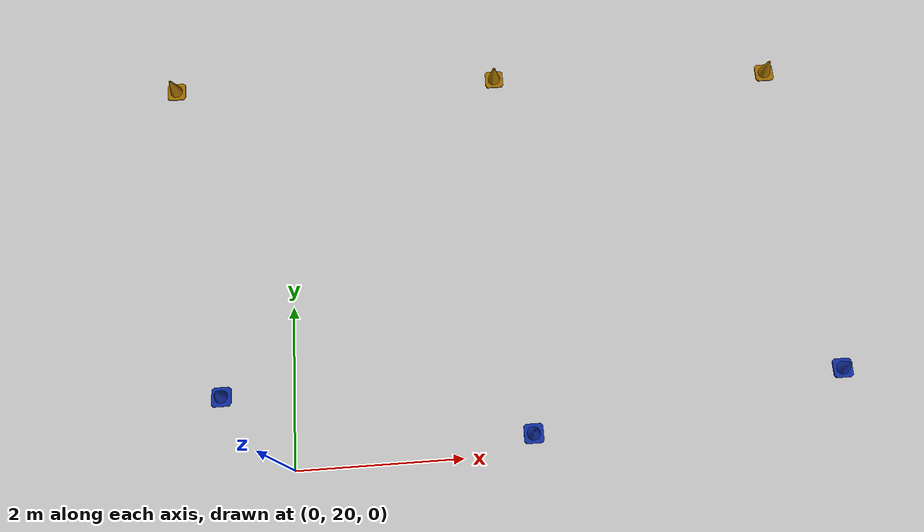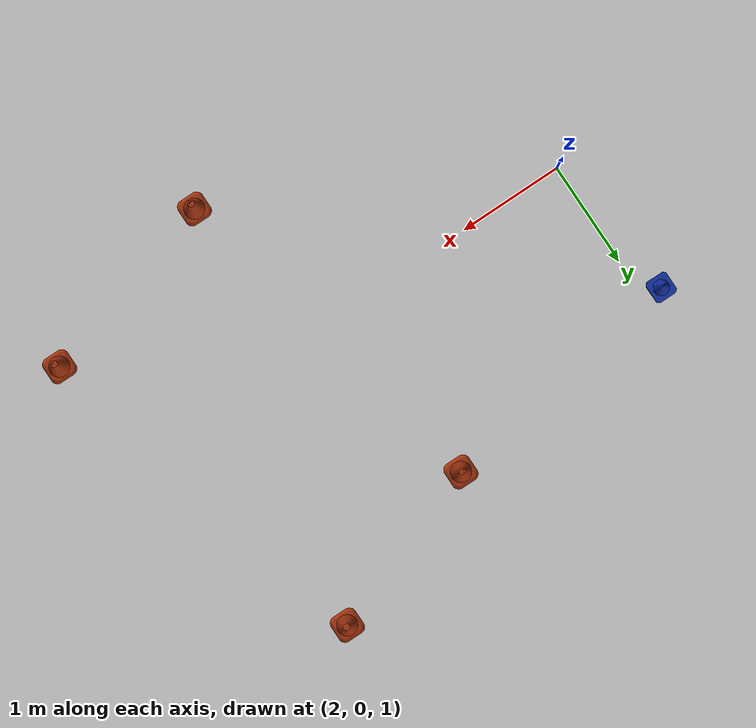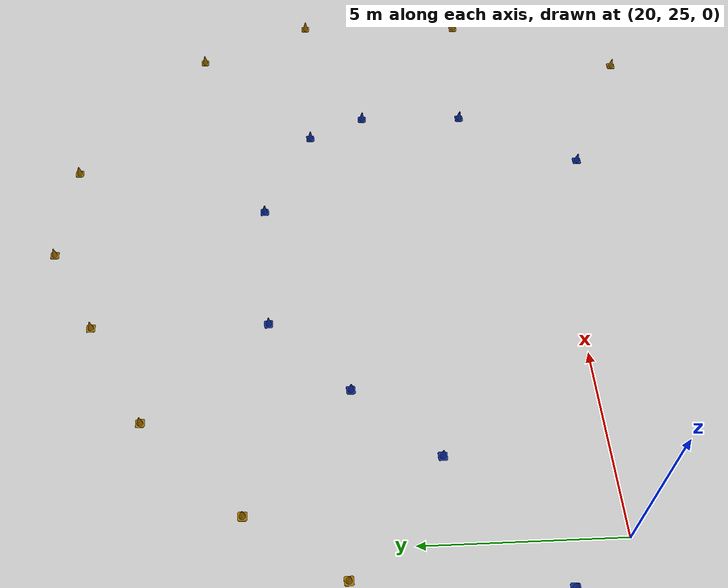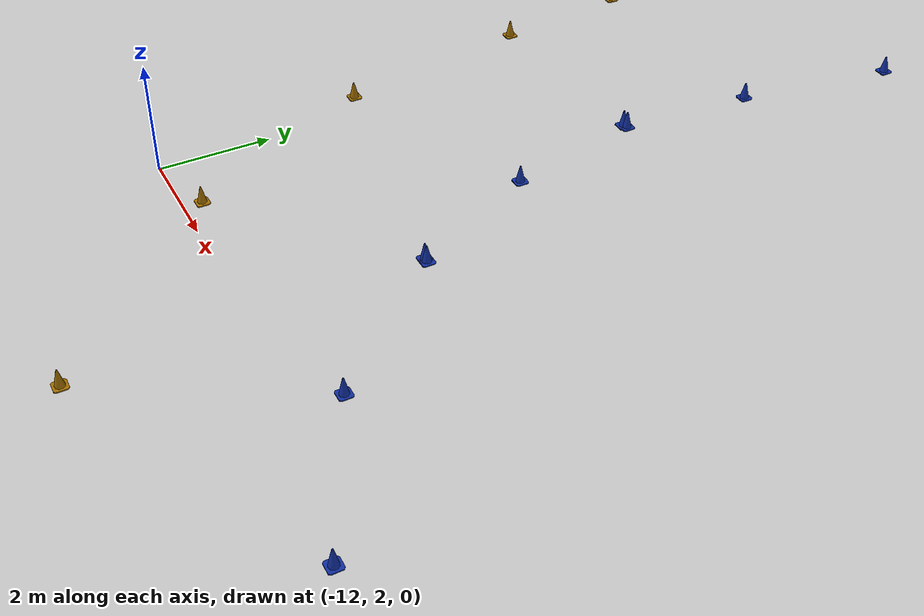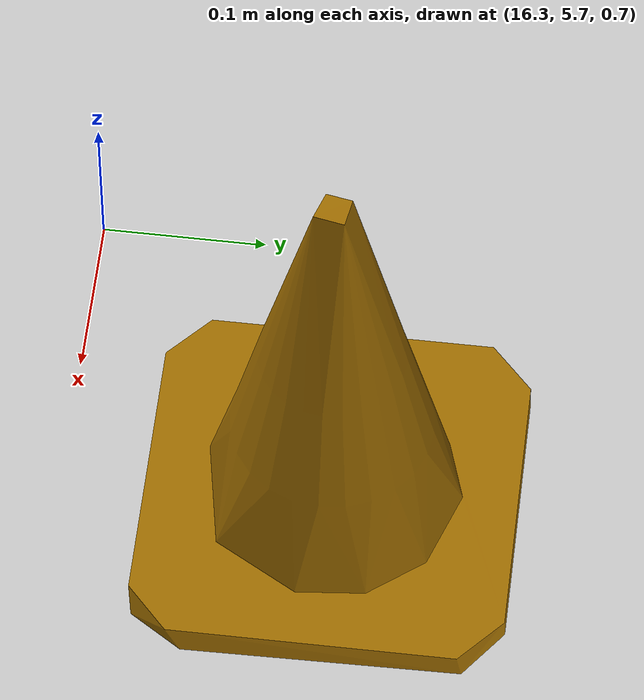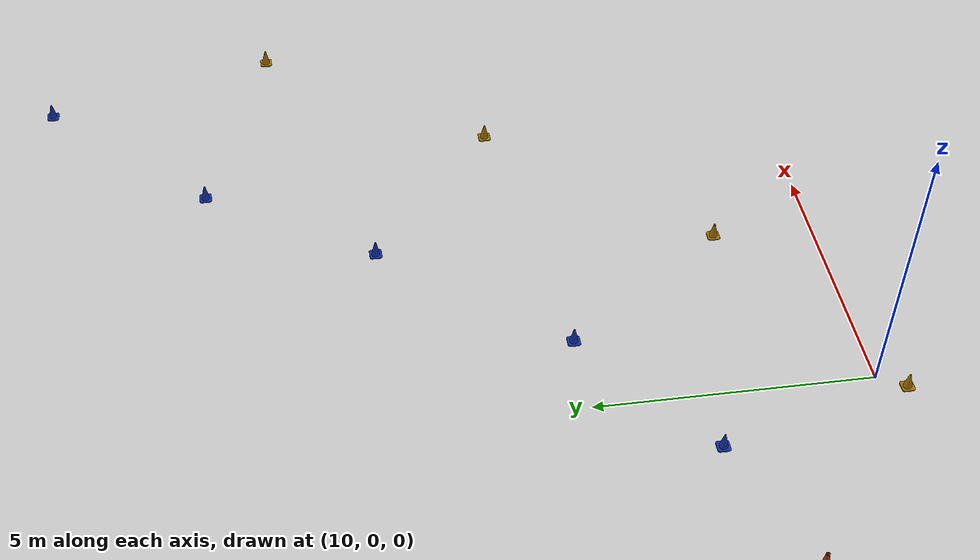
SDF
<sdf version='1.6'>
  <world name='QR_Nov_2022'>
    <gui fullscreen='0'>
      <camera name='user_camera'>
        <pose frame=''>-40 40 20 0 0.667643 -1</pose>
        <view_controller>orbit</view_controller>
        <projection_type>perspective</projection_type>
      </camera>
    </gui>

    <!-- WORLD SETTINGS -->
    <scene>
      <ambient>1.0 1.0 1.0 1.0</ambient>
      <shadows>false</shadows>
    </scene>

    <spherical_coordinates>
      <heading_deg>180</heading_deg>

      <!-- Appleton Tower coordinates -->
      <latitude_deg>-27.690733</latitude_deg>
      <longitude_deg>152.656715</longitude_deg>
    </spherical_coordinates>

    <light name='sun' type='directional'>
      <cast_shadows>1</cast_shadows>
      <pose frame=''>0 0 10 0 -0 0</pose>
      <diffuse>0.8 0.8 0.8 1</diffuse>
      <specular>0.1 0.1 0.1 1</specular>
      <attenuation>
        <range>1000</range>
        <constant>0.9</constant>
        <linear>0.01</linear>
        <quadratic>0.001</quadratic>
      </attenuation>
      <direction>-0.5 0.5 -1</direction>
    </light>

    <!-- MODELS -->
    <include>
      <uri>model://ground_plane</uri>
      <pose>0.0 0.0 0.0 0 0 0</pose>
    </include>

    <include>
      <uri>model://QR_Nov_2022</uri>
      <pose>0 0 0.5 0 0 0</pose>
    </include>

  </world>
</sdf>

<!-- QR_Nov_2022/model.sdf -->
<sdf version='1.6'>
  <model name='track'>

    <include>
      <pose>18.17680403 14.20583861 0.15 0 0 0</pose>
      <uri>model://blue_cone</uri>
      <name>blue_cone_0</name>

      <covariance x="0.1" y="0.1" xy="0.0"/>

    </include>

    <include>
      <pose>15.40579444 11.30291158 0.15 0 0 0</pose>
      <uri>model://blue_cone</uri>
      <name>blue_cone_1</name>

      <covariance x="0.1" y="0.1" xy="0.0"/>

    </include>

    <include>
      <pose>13.51010564 8.308520094 0.15 0 0 0</pose>
      <uri>model://blue_cone</uri>
      <name>blue_cone_2</name>

      <covariance x="0.1" y="0.1" xy="0.0"/>

    </include>

    <include>
      <pose>10.95853874 5.171061869 0.15 0 0 0</pose>
      <uri>model://blue_cone</uri>
      <name>blue_cone_3</name>

      <covariance x="0.1" y="0.1" xy="0.0"/>

    </include>

    <include>
      <pose>20.78641015 16.52219488 0.15 0 0 0</pose>
      <uri>model://blue_cone</uri>
      <name>blue_cone_4</name>

      <covariance x="0.1" y="0.1" xy="0.0"/>

    </include>

    <include>
      <pose>10.71810818 22.14535232 0.15 0 0 0</pose>
      <uri>model://blue_cone</uri>
      <name>blue_cone_5</name>

      <covariance x="0.1" y="0.1" xy="0.0"/>

    </include>

    <include>
      <pose>15.29090892 24.00097857 0.15 0 0 0</pose>
      <uri>model://blue_cone</uri>
      <name>blue_cone_6</name>

      <covariance x="0.1" y="0.1" xy="0.0"/>

    </include>

    <include>
      <pose>24.26430135 18.75490843 0.15 0 0 0</pose>
      <uri>model://blue_cone</uri>
      <name>blue_cone_7</name>

      <covariance x="0.1" y="0.1" xy="0.0"/>

    </include>

    <include>
      <pose>18.66940879 26.66106741 0.15 0 0 0</pose>
      <uri>model://blue_cone</uri>
      <name>blue_cone_8</name>

      <covariance x="0.1" y="0.1" xy="0.0"/>

    </include>

    <include>
      <pose>28.32434068 20.40012492 0.15 0 0 0</pose>
      <uri>model://blue_cone</uri>
      <name>blue_cone_9</name>

      <covariance x="0.1" y="0.1" xy="0.0"/>

    </include>

    <include>
      <pose>21.92220906 29.21634961 0.15 0 0 0</pose>
      <uri>model://blue_cone</uri>
      <name>blue_cone_10</name>

      <covariance x="0.1" y="0.1" xy="0.0"/>

    </include>

    <include>
      <pose>31.0254148 24.29077048 0.15 0 0 0</pose>
      <uri>model://blue_cone</uri>
      <name>blue_cone_11</name>

      <covariance x="0.1" y="0.1" xy="0.0"/>

    </include>

    <include>
      <pose>23.78503575 31.28224072 0.15 0 0 0</pose>
      <uri>model://blue_cone</uri>
      <name>blue_cone_12</name>

      <covariance x="0.1" y="0.1" xy="0.0"/>

    </include>

    <include>
      <pose>32.83006436 27.48239472 0.15 0 0 0</pose>
      <uri>model://blue_cone</uri>
      <name>blue_cone_13</name>

      <covariance x="0.1" y="0.1" xy="0.0"/>

    </include>

    <include>
      <pose>29.48703262 33.31915611 0.15 0 0 0</pose>
      <uri>model://blue_cone</uri>
      <name>blue_cone_14</name>

      <covariance x="0.1" y="0.1" xy="0.0"/>

    </include>

    <include>
      <pose>25.79421095 33.27449932 0.15 0 0 0</pose>
      <uri>model://blue_cone</uri>
      <name>blue_cone_15</name>

      <covariance x="0.1" y="0.1" xy="0.0"/>

    </include>

    <include>
      <pose>32.20176652 31.94039247 0.15 0 0 0</pose>
      <uri>model://blue_cone</uri>
      <name>blue_cone_16</name>

      <covariance x="0.1" y="0.1" xy="0.0"/>

    </include>

    <include>
      <pose>32.90434608 30.37604929 0.15 0 0 0</pose>
      <uri>model://blue_cone</uri>
      <name>blue_cone_17</name>

      <covariance x="0.1" y="0.1" xy="0.0"/>

    </include>

    <include>
      <pose>2.81230262 20.14946624 0.15 0 0 0</pose>
      <uri>model://blue_cone</uri>
      <name>blue_cone_18</name>

      <covariance x="0.1" y="0.1" xy="0.0"/>

    </include>

    <include>
      <pose>6.427935878 20.64101361 0.15 0 0 0</pose>
      <uri>model://blue_cone</uri>
      <name>blue_cone_19</name>

      <covariance x="0.1" y="0.1" xy="0.0"/>

    </include>

    <include>
      <pose>-0.711752944 20.81542155 0.15 0 0 0</pose>
      <uri>model://blue_cone</uri>
      <name>blue_cone_20</name>

      <covariance x="0.1" y="0.1" xy="0.0"/>

    </include>

    <include>
      <pose>-3.375433131 20.41412582 0.15 0 0 0</pose>
      <uri>model://blue_cone</uri>
      <name>blue_cone_21</name>

      <covariance x="0.1" y="0.1" xy="0.0"/>

    </include>

    <include>
      <pose>-5.469445946 19.30514189 0.15 0 0 0</pose>
      <uri>model://blue_cone</uri>
      <name>blue_cone_22</name>

      <covariance x="0.1" y="0.1" xy="0.0"/>

    </include>

    <include>
      <pose>-7.039942685 17.15414599 0.15 0 0 0</pose>
      <uri>model://blue_cone</uri>
      <name>blue_cone_23</name>

      <covariance x="0.1" y="0.1" xy="0.0"/>

    </include>

    <include>
      <pose>-8.038974191 14.39267013 0.15 0 0 0</pose>
      <uri>model://blue_cone</uri>
      <name>blue_cone_24</name>

      <covariance x="0.1" y="0.1" xy="0.0"/>

    </include>

    <include>
      <pose>-8.463473741 11.60294894 0.15 0 0 0</pose>
      <uri>model://blue_cone</uri>
      <name>blue_cone_25</name>

      <covariance x="0.1" y="0.1" xy="0.0"/>

    </include>

    <include>
      <pose>-8.611131014 9.25148091 0.15 0 0 0</pose>
      <uri>model://blue_cone</uri>
      <name>blue_cone_26</name>

      <covariance x="0.1" y="0.1" xy="0.0"/>

    </include>

    <include>
      <pose>-6.881294554 4.609147677 0.15 0 0 0</pose>
      <uri>model://blue_cone</uri>
      <name>blue_cone_27</name>

      <covariance x="0.1" y="0.1" xy="0.0"/>

    </include>

    <include>
      <pose>-2.293654664 1.149375447 0.15 0 0 0</pose>
      <uri>model://blue_cone</uri>
      <name>blue_cone_28</name>

      <covariance x="0.1" y="0.1" xy="0.0"/>

    </include>

    <include>
      <pose>-8.047093882 6.856317429 0.15 0 0 0</pose>
      <uri>model://blue_cone</uri>
      <name>blue_cone_29</name>

      <covariance x="0.1" y="0.1" xy="0.0"/>

    </include>

    <include>
      <pose>-6.946138364 4.609653063 0.15 0 0 0</pose>
      <uri>model://blue_cone</uri>
      <name>blue_cone_30</name>

      <covariance x="0.1" y="0.1" xy="0.0"/>

    </include>

    <include>
      <pose>-4.853489753 2.389095659 0.15 0 0 0</pose>
      <uri>model://blue_cone</uri>
      <name>blue_cone_31</name>

      <covariance x="0.1" y="0.1" xy="0.0"/>

    </include>

    <include>
      <pose>-8.676572022 9.2250375 0.15 0 0 0</pose>
      <uri>model://blue_cone</uri>
      <name>blue_cone_32</name>

      <covariance x="0.1" y="0.1" xy="0.0"/>

    </include>

    <include>
      <pose>1.775248444 1.397972679 0.15 0 0 0</pose>
      <uri>model://blue_cone</uri>
      <name>blue_cone_33</name>

      <covariance x="0.1" y="0.1" xy="0.0"/>

    </include>

    <include>
      <pose>8.395255217 3.220222776 0.15 0 0 0</pose>
      <uri>model://blue_cone</uri>
      <name>blue_cone_34</name>

      <covariance x="0.1" y="0.1" xy="0.0"/>

    </include>

    <include>
      <pose>9.226343861 -0.160132972 0.15 0 0 0</pose>
      <uri>model://yellow_cone</uri>
      <name>yellow_cone_35</name>

      <covariance x="0.1" y="0.1" xy="0.0"/>

    </include>

    <include>
      <pose>16.44840171 5.857748476 0.15 0 0 0</pose>
      <uri>model://yellow_cone</uri>
      <name>yellow_cone_36</name>

      <covariance x="0.1" y="0.1" xy="0.0"/>

    </include>

    <include>
      <pose>19.33592246 9.93281367 0.15 0 0 0</pose>
      <uri>model://yellow_cone</uri>
      <name>yellow_cone_37</name>

      <covariance x="0.1" y="0.1" xy="0.0"/>

    </include>

    <include>
      <pose>13.17189423 2.137124445 0.15 0 0 0</pose>
      <uri>model://yellow_cone</uri>
      <name>yellow_cone_38</name>

      <covariance x="0.1" y="0.1" xy="0.0"/>

    </include>

    <include>
      <pose>23.45175066 13.57938683 0.15 0 0 0</pose>
      <uri>model://yellow_cone</uri>
      <name>yellow_cone_39</name>

      <covariance x="0.1" y="0.1" xy="0.0"/>

    </include>

    <include>
      <pose>27.0627711 15.78073921 0.15 0 0 0</pose>
      <uri>model://yellow_cone</uri>
      <name>yellow_cone_40</name>

      <covariance x="0.1" y="0.1" xy="0.0"/>

    </include>

    <include>
      <pose>31.11573504 18.3549251 0.15 0 0 0</pose>
      <uri>model://yellow_cone</uri>
      <name>yellow_cone_41</name>

      <covariance x="0.1" y="0.1" xy="0.0"/>

    </include>

    <include>
      <pose>20.61570986 33.96696121 0.15 0 0 0</pose>
      <uri>model://yellow_cone</uri>
      <name>yellow_cone_42</name>

      <covariance x="0.1" y="0.1" xy="0.0"/>

    </include>

    <include>
      <pose>23.08352295 36.4339676 0.15 0 0 0</pose>
      <uri>model://yellow_cone</uri>
      <name>yellow_cone_43</name>

      <covariance x="0.1" y="0.1" xy="0.0"/>

    </include>

    <include>
      <pose>36.75966119 27.19295792 0.15 0 0 0</pose>
      <uri>model://yellow_cone</uri>
      <name>yellow_cone_44</name>

      <covariance x="0.1" y="0.1" xy="0.0"/>

    </include>

    <include>
      <pose>34.86133821 22.49158815 0.15 0 0 0</pose>
      <uri>model://yellow_cone</uri>
      <name>yellow_cone_45</name>

      <covariance x="0.1" y="0.1" xy="0.0"/>

    </include>

    <include>
      <pose>25.85320325 37.84210296 0.15 0 0 0</pose>
      <uri>model://yellow_cone</uri>
      <name>yellow_cone_46</name>

      <covariance x="0.1" y="0.1" xy="0.0"/>

    </include>

    <include>
      <pose>36.92619479 31.90679434 0.15 0 0 0</pose>
      <uri>model://yellow_cone</uri>
      <name>yellow_cone_47</name>

      <covariance x="0.1" y="0.1" xy="0.0"/>

    </include>

    <include>
      <pose>35.50949571 35.07301859 0.15 0 0 0</pose>
      <uri>model://yellow_cone</uri>
      <name>yellow_cone_48</name>

      <covariance x="0.1" y="0.1" xy="0.0"/>

    </include>

    <include>
      <pose>31.11533188 38.57777345 0.15 0 0 0</pose>
      <uri>model://yellow_cone</uri>
      <name>yellow_cone_49</name>

      <covariance x="0.1" y="0.1" xy="0.0"/>

    </include>

    <include>
      <pose>28.22880999 39.00038303 0.15 0 0 0</pose>
      <uri>model://yellow_cone</uri>
      <name>yellow_cone_50</name>

      <covariance x="0.1" y="0.1" xy="0.0"/>

    </include>

    <include>
      <pose>19.02722837 31.62375184 0.15 0 0 0</pose>
      <uri>model://yellow_cone</uri>
      <name>yellow_cone_51</name>

      <covariance x="0.1" y="0.1" xy="0.0"/>

    </include>

    <include>
      <pose>9.869514168 25.34143048 0.15 0 0 0</pose>
      <uri>model://yellow_cone</uri>
      <name>yellow_cone_52</name>

      <covariance x="0.1" y="0.1" xy="0.0"/>

    </include>

    <include>
      <pose>16.82681487 28.90136282 0.15 0 0 0</pose>
      <uri>model://yellow_cone</uri>
      <name>yellow_cone_53</name>

      <covariance x="0.1" y="0.1" xy="0.0"/>

    </include>

    <include>
      <pose>13.71607237 26.64691276 0.15 0 0 0</pose>
      <uri>model://yellow_cone</uri>
      <name>yellow_cone_54</name>

      <covariance x="0.1" y="0.1" xy="0.0"/>

    </include>

    <include>
      <pose>6.131084887 24.49241977 0.15 0 0 0</pose>
      <uri>model://yellow_cone</uri>
      <name>yellow_cone_55</name>

      <covariance x="0.1" y="0.1" xy="0.0"/>

    </include>

    <include>
      <pose>2.682097564 24.64123287 0.15 0 0 0</pose>
      <uri>model://yellow_cone</uri>
      <name>yellow_cone_56</name>

      <covariance x="0.1" y="0.1" xy="0.0"/>

    </include>

    <include>
      <pose>-1.346370724 24.75135706 0.15 0 0 0</pose>
      <uri>model://yellow_cone</uri>
      <name>yellow_cone_57</name>

      <covariance x="0.1" y="0.1" xy="0.0"/>

    </include>

    <include>
      <pose>-4.911469829 24.02853798 0.15 0 0 0</pose>
      <uri>model://yellow_cone</uri>
      <name>yellow_cone_58</name>

      <covariance x="0.1" y="0.1" xy="0.0"/>

    </include>

    <include>
      <pose>-9.113506866 21.5342787 0.15 0 0 0</pose>
      <uri>model://yellow_cone</uri>
      <name>yellow_cone_59</name>

      <covariance x="0.1" y="0.1" xy="0.0"/>

    </include>

    <include>
      <pose>-10.89422421 19.59594257 0.15 0 0 0</pose>
      <uri>model://yellow_cone</uri>
      <name>yellow_cone_60</name>

      <covariance x="0.1" y="0.1" xy="0.0"/>

    </include>

    <include>
      <pose>-12.6335665 11.46787424 0.15 0 0 0</pose>
      <uri>model://yellow_cone</uri>
      <name>yellow_cone_61</name>

      <covariance x="0.1" y="0.1" xy="0.0"/>

    </include>

    <include>
      <pose>-12.4621168 15.02223415 0.15 0 0 0</pose>
      <uri>model://yellow_cone</uri>
      <name>yellow_cone_62</name>

      <covariance x="0.1" y="0.1" xy="0.0"/>

    </include>

    <include>
      <pose>-12.28653085 9.00763774 0.15 0 0 0</pose>
      <uri>model://yellow_cone</uri>
      <name>yellow_cone_63</name>

      <covariance x="0.1" y="0.1" xy="0.0"/>

    </include>

    <include>
      <pose>-11.61945424 5.509683245 0.15 0 0 0</pose>
      <uri>model://yellow_cone</uri>
      <name>yellow_cone_64</name>

      <covariance x="0.1" y="0.1" xy="0.0"/>

    </include>

    <include>
      <pose>-9.851036979 2.112638755 0.15 0 0 0</pose>
      <uri>model://yellow_cone</uri>
      <name>yellow_cone_65</name>

      <covariance x="0.1" y="0.1" xy="0.0"/>

    </include>

    <include>
      <pose>-6.737972748 -0.936353922 0.15 0 0 0</pose>
      <uri>model://yellow_cone</uri>
      <name>yellow_cone_66</name>

      <covariance x="0.1" y="0.1" xy="0.0"/>

    </include>

    <include>
      <pose>-2.065519104 -2.392887452 0.15 0 0 0</pose>
      <uri>model://yellow_cone</uri>
      <name>yellow_cone_67</name>

      <covariance x="0.1" y="0.1" xy="0.0"/>

    </include>

    <include>
      <pose>2.120385193 -2.487674646 0.15 0 0 0</pose>
      <uri>model://yellow_cone</uri>
      <name>yellow_cone_68</name>

      <covariance x="0.1" y="0.1" xy="0.0"/>

    </include>

    <include>
      <pose>4.906451789 -1.533552114 0.15 0 0 0</pose>
      <uri>model://big_cone</uri>
      <name>big_cone_69</name>

      <covariance x="0.1" y="0.1" xy="0.0"/>

    </include>

    <include>
      <pose>4.211421703 1.787310238 0.15 0 0 0</pose>
      <uri>model://big_cone</uri>
      <name>big_cone_70</name>

      <covariance x="0.1" y="0.1" xy="0.0"/>

    </include>

    <include>
      <pose>5.829370557 2.372503796 0.15 0 0 0</pose>
      <uri>model://big_cone</uri>
      <name>big_cone_71</name>

      <covariance x="0.1" y="0.1" xy="0.0"/>

    </include>

    <include>
      <pose>6.711559588 -1.011200049 0.15 0 0 0</pose>
      <uri>model://big_cone</uri>
      <name>big_cone_72</name>

      <covariance x="0.1" y="0.1" xy="0.0"/>

    </include>

    <static>0</static>
    <allow_auto_disable>1</allow_auto_disable>
  </model>
</sdf>

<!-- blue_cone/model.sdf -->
<sdf version='1.6'>
  <model name='blue_cone'>
    <link name='link'>
      <pose frame=''>0 0 0 0 0 0</pose>
      <inertial>
        <inertia>
          <ixx>0.0016</ixx>
          <ixy>0</ixy>
          <ixz>0</ixz>
          <iyy>0.0016</iyy>
          <iyz>0</iyz>
          <izz>0.0010</izz>
        </inertia>
        <mass>0.45</mass>
      </inertial>
      <visual name='visual'>
        <geometry>
          <mesh>
            <uri>model://cone_blue.dae</uri>
          </mesh>
        </geometry>
        <cast_shadows>1</cast_shadows>
      </visual>
      <collision name='collision'>
        <max_contacts>3</max_contacts>
        <geometry>
          <mesh>
            <uri>model://cone_blue.dae</uri>
          </mesh>
        </geometry>
      </collision>
    </link>
  </model>
</sdf>

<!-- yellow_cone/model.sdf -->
<sdf version='1.6'>
  <model name='yellow_cone'>
    <link name='link'>
      <pose frame=''>0 0 0 0 0 0</pose>
      <inertial>
        <inertia>
          <ixx>0.0016</ixx>
          <ixy>0</ixy>
          <ixz>0</ixz>
          <iyy>0.0016</iyy>
          <iyz>0</iyz>
          <izz>0.0010</izz>
        </inertia>
        <mass>0.45</mass>
      </inertial>
      <visual name='visual'>
        <geometry>
          <mesh>
            <uri>model://cone_yellow.dae</uri>
          </mesh>
        </geometry>
        <cast_shadows>1</cast_shadows>
      </visual>
      <collision name='collision'>
        <max_contacts>3</max_contacts>
        <geometry>
          <mesh>
            <uri>model://cone_yellow.dae</uri>
          </mesh>
        </geometry>
      </collision>
    </link>
  </model>
</sdf>

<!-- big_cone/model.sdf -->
<sdf version='1.6'>
  <model name='big_cone'>
    <link name='link'>
      <pose frame=''>0 0 0 0 0 0</pose>
      <inertial>
        <inertia>
          <ixx>0.0016</ixx>
          <ixy>0</ixy>
          <ixz>0</ixz>
          <iyy>0.0016</iyy>
          <iyz>0</iyz>
          <izz>0.0010</izz>
        </inertia>
        <mass>0.45</mass>
      </inertial>
      <visual name='visual'>
        <geometry>
          <mesh>
            <uri>model://cone_big.dae</uri>
          </mesh>
        </geometry>
        <cast_shadows>1</cast_shadows>
      </visual>
      <collision name='collision'>
        <max_contacts>3</max_contacts>
        <geometry>
          <mesh>
            <uri>model://cone_big.dae</uri>
          </mesh>
        </geometry>
      </collision>
    </link>
  </model>
</sdf>
